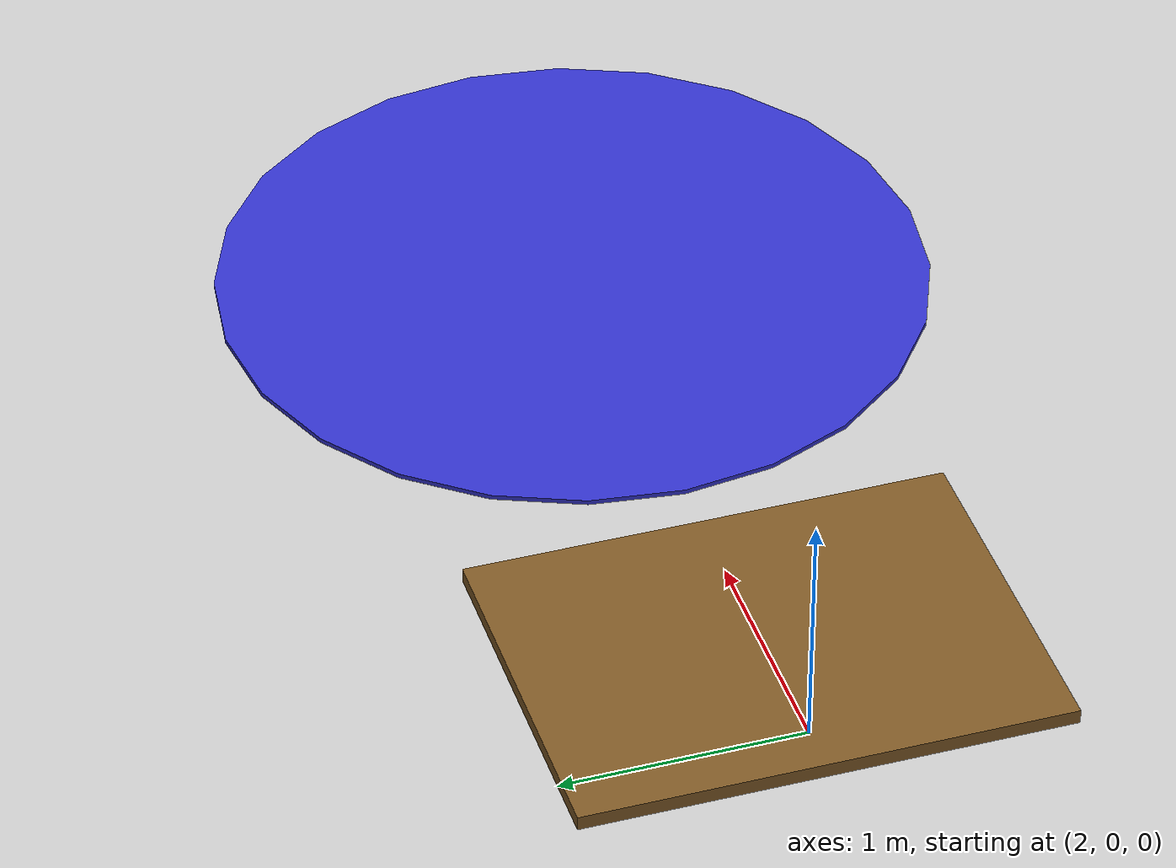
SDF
<?xml version="1.0" ?>
<!-- Alias world for the hybrid transition demo -->
<sdf version="1.6">
  <world name="hybrid_transition_world">
    <include>
      <uri>model://sun</uri>
    </include>
    <include>
      <uri>model://ground_plane</uri>
    </include>

    <!-- Landing pad for flight mode testing -->
    <model name="landing_pad">
      <static>true</static>
      <pose>5.0 0 0.01 0 0 0</pose>
      <link name="link">
        <collision name="collision"><geometry><cylinder><radius>1.5</radius><length>0.02</length></cylinder></geometry></collision>
        <visual name="visual"><geometry><cylinder><radius>1.5</radius><length>0.02</length></cylinder></geometry>
          <material><ambient>0.2 0.2 0.8 1</ambient><diffuse>0.2 0.2 0.8 1</diffuse></material>
        </visual>
      </link>
    </model>

    <!-- Rough terrain patch -->
    <model name="rough_patch">
      <static>true</static>
      <pose>2.5 0 0.03 0 0 0</pose>
      <link name="link">
        <collision name="collision"><geometry><box><size>1.5 2.0 0.06</size></box></geometry></collision>
        <visual name="visual"><geometry><box><size>1.5 2.0 0.06</size></box></geometry>
          <material><ambient>0.5 0.35 0.15 1</ambient><diffuse>0.5 0.35 0.15 1</diffuse></material>
        </visual>
      </link>
    </model>

    <physics type="ode">
      <max_step_size>0.001</max_step_size>
      <real_time_factor>1.0</real_time_factor>
      <real_time_update_rate>1000</real_time_update_rate>
    </physics>
  </world>
</sdf>
